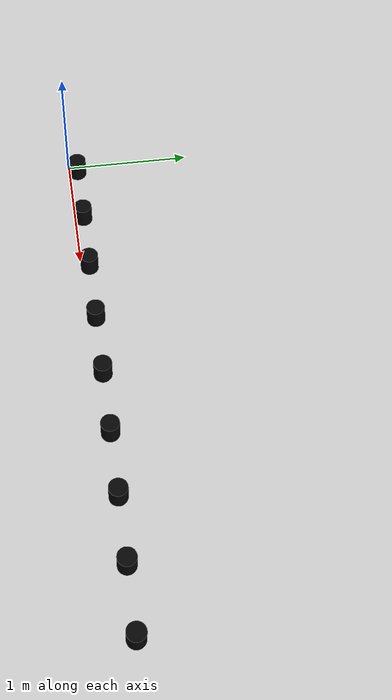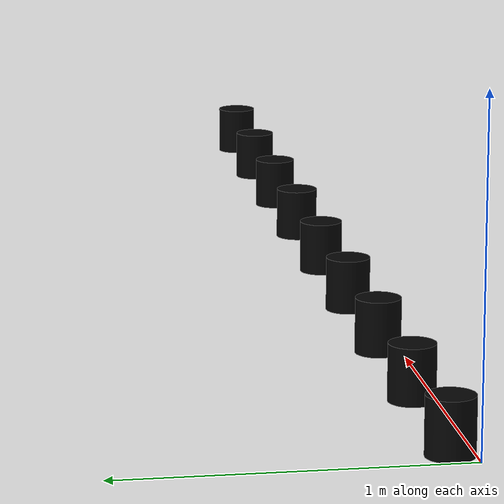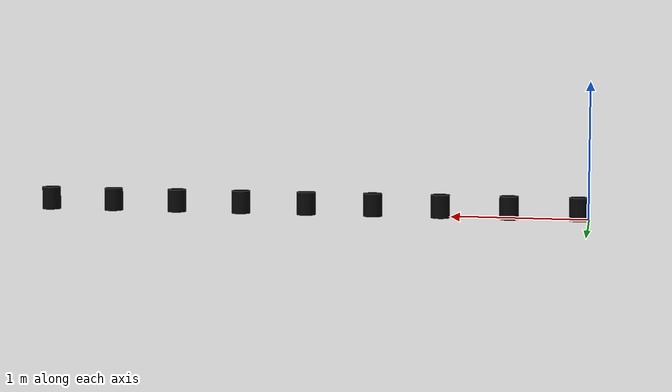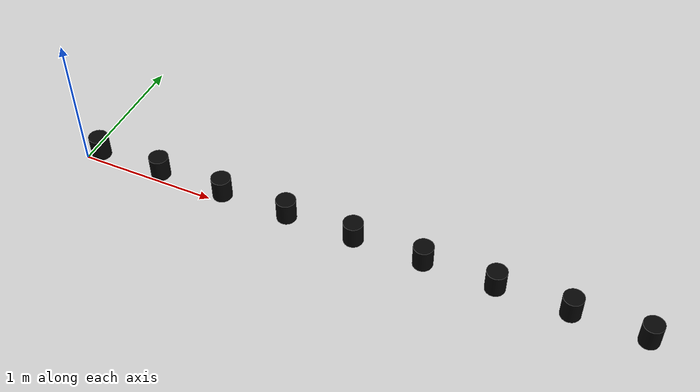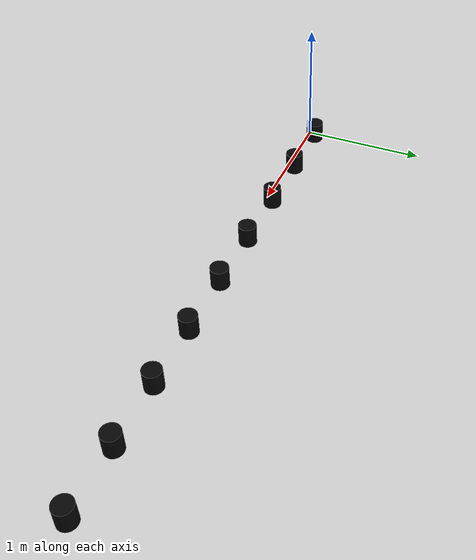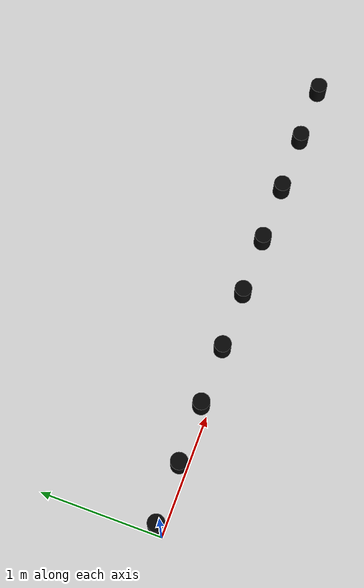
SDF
<?xml version="1.0" ?>
<sdf version="1.5">

<model name="pot9">
<static>1</static>
<pose>0.0 0.0 0.0 1.5707 0.0 1.5707</pose>

  <link name="link">

    <collision name="collision">
      <geometry>
        <mesh>
          <uri>model://pot9/pot9.stl</uri>
        </mesh>
      </geometry>
    </collision>

    <visual name="visual">
      <geometry>
        <mesh>
          <uri>model://pot9/pot9.stl</uri>
        </mesh>
      </geometry>
      <material>
        <lighting>1</lighting>
        <shader type='vertex'>
          <normal_map>__default__</normal_map>
        </shader>
        <ambient>0.2 0.2 0.2 1</ambient>
        <diffuse>0.02 0.02 0.02 1</diffuse>
        <specular>0 0 0 1</specular>
        <emissive>0 0 0 1</emissive>
      </material>
      <cast_shadows>0</cast_shadows>
    </visual>

  </link>
</model>
</sdf>
